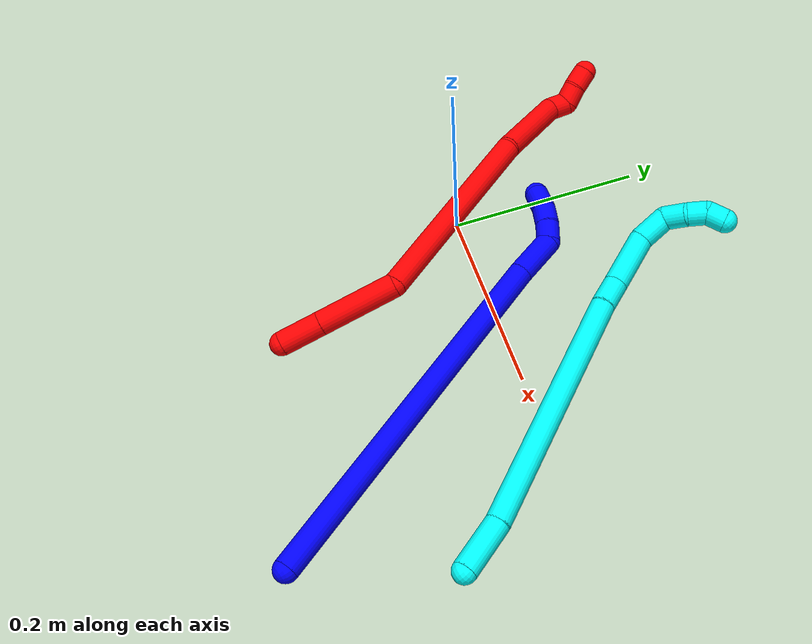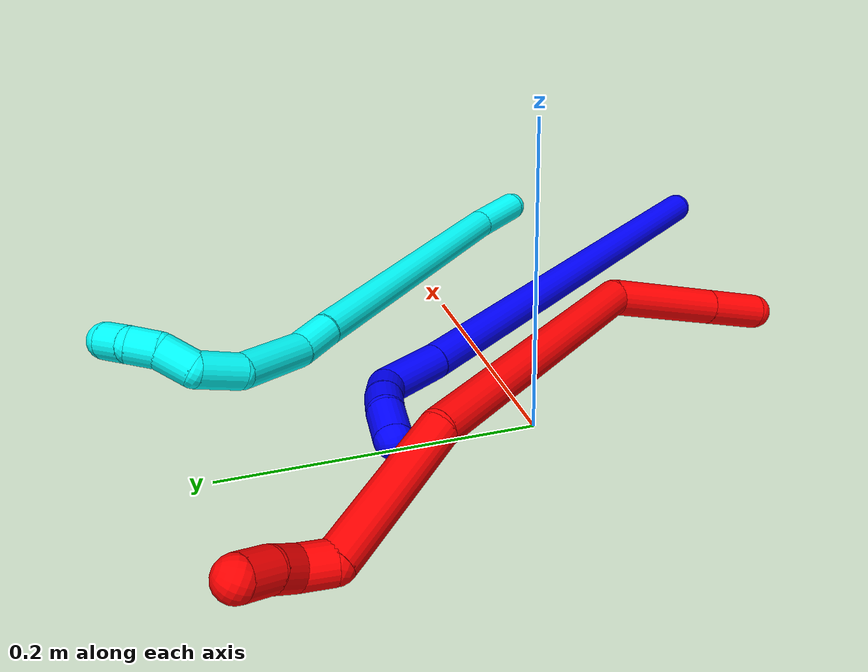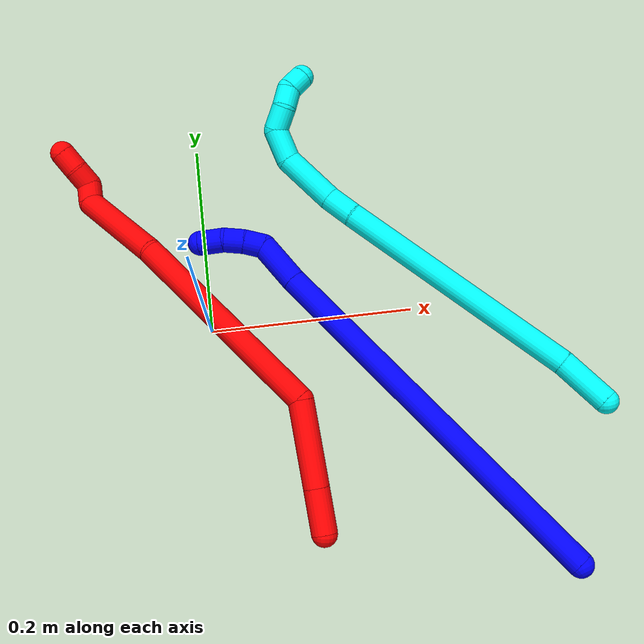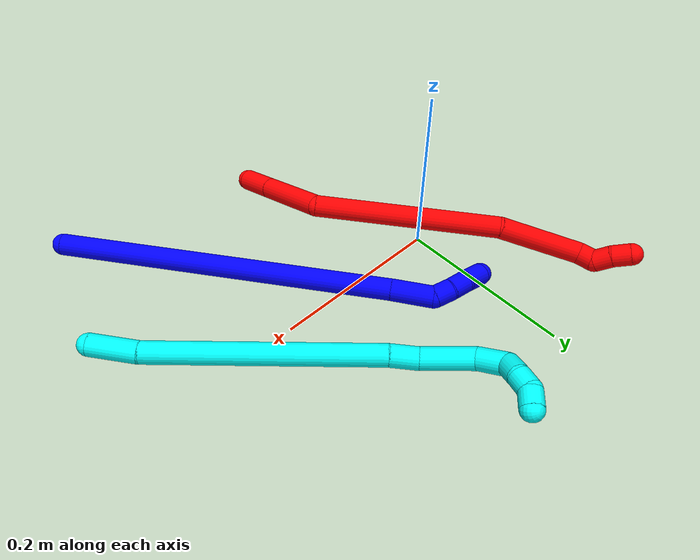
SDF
<sdf version="1.7">
 <world name="default">
  <model name="1">
   <static>0</static>
   <link name="1">
    <collision name="collision-cylinder-e_1_1_4">
     <pose>-0.044673 0.042149 -0.18265 -2.9148 -0.233956 1.60217</pose>
     <geometry><cylinder><radius>0.0125</radius><length>0.3854</length></cylinder></geometry>
     <surface>
      <friction><ode><mu>1.16</mu><mu2>1.16</mu2><slip1>0</slip1><slip2>0</slip2></ode></friction>
      <contact><ode><kp>1e+06</kp><kd>1</kd><max_vel>0</max_vel><min_depth>0.001</min_depth></ode></contact>
     </surface>
    </collision>
    <visual name="visual-cylinder-e_1_1_4">
     <pose>-0.044673 0.042149 -0.18265 -2.9148 -0.233956 1.60217</pose>
     <geometry><cylinder><radius>0.0125</radius><length>0.3854</length></cylinder></geometry>
     <material><ambient>0 0 1 1</ambient></material>
    </visual>
    <collision name="collision-cylinder-e_2_4_5">
     <pose>-0.093506 0.08866 -0.388604 -2.95654 -0.17369 1.50711</pose>
     <geometry><cylinder><radius>0.0125</radius><length>0.048141</length></cylinder></geometry>
     <surface>
      <friction><ode><mu>1.16</mu><mu2>1.16</mu2><slip1>0</slip1><slip2>0</slip2></ode></friction>
      <contact><ode><kp>1e+06</kp><kd>1</kd><max_vel>0</max_vel><min_depth>0.001</min_depth></ode></contact>
     </surface>
    </collision>
    <visual name="visual-cylinder-e_2_4_5">
     <pose>-0.093506 0.08866 -0.388604 -2.95654 -0.17369 1.50711</pose>
     <geometry><cylinder><radius>0.0125</radius><length>0.048141</length></cylinder></geometry>
     <material><ambient>0 0 1 1</ambient></material>
    </visual>
    <collision name="collision-cylinder-e_3_5_6">
     <pose>-0.101841 0.100434 -0.418208 -2.27528 -0.405425 0.836457</pose>
     <geometry><cylinder><radius>0.0125</radius><length>0.021171</length></cylinder></geometry>
     <surface>
      <friction><ode><mu>1.16</mu><mu2>1.16</mu2><slip1>0</slip1><slip2>0</slip2></ode></friction>
      <contact><ode><kp>1e+06</kp><kd>1</kd><max_vel>0</max_vel><min_depth>0.001</min_depth></ode></contact>
     </surface>
    </collision>
    <visual name="visual-cylinder-e_3_5_6">
     <pose>-0.101841 0.100434 -0.418208 -2.27528 -0.405425 0.836457</pose>
     <geometry><cylinder><radius>0.0125</radius><length>0.021171</length></cylinder></geometry>
     <material><ambient>0 0 1 1</ambient></material>
    </visual>
    <collision name="collision-cylinder-e_4_6_7">
     <pose>-0.111134 0.115076 -0.429376 -2.16349 -0.530876 0.944559</pose>
     <geometry><cylinder><radius>0.0125</radius><length>0.020215</length></cylinder></geometry>
     <surface>
      <friction><ode><mu>1.16</mu><mu2>1.16</mu2><slip1>0</slip1><slip2>0</slip2></ode></friction>
      <contact><ode><kp>1e+06</kp><kd>1</kd><max_vel>0</max_vel><min_depth>0.001</min_depth></ode></contact>
     </surface>
    </collision>
    <visual name="visual-cylinder-e_4_6_7">
     <pose>-0.111134 0.115076 -0.429376 -2.16349 -0.530876 0.944559</pose>
     <geometry><cylinder><radius>0.0125</radius><length>0.020215</length></cylinder></geometry>
     <material><ambient>0 0 1 1</ambient></material>
    </visual>
    <collision name="collision-cylinder-e_5_7_2">
     <pose>-0.125317 0.129724 -0.43871 -2.1126 -0.808423 1.2956</pose>
     <geometry><cylinder><radius>0.0125</radius><length>0.025072</length></cylinder></geometry>
     <surface>
      <friction><ode><mu>1.16</mu><mu2>1.16</mu2><slip1>0</slip1><slip2>0</slip2></ode></friction>
      <contact><ode><kp>1e+06</kp><kd>1</kd><max_vel>0</max_vel><min_depth>0.001</min_depth></ode></contact>
     </surface>
    </collision>
    <visual name="visual-cylinder-e_5_7_2">
     <pose>-0.125317 0.129724 -0.43871 -2.1126 -0.808423 1.2956</pose>
     <geometry><cylinder><radius>0.0125</radius><length>0.025072</length></cylinder></geometry>
     <material><ambient>0 0 1 1</ambient></material>
    </visual>
    <collision name="collision-sphere-2">
     <pose>-0.134383 0.137141 -0.443175 0 -0 0</pose>
     <geometry><sphere><radius>0.0125</radius></sphere></geometry>
     <surface>
      <friction><ode><mu>1.16</mu><mu2>1.16</mu2><slip1>0</slip1><slip2>0</slip2></ode></friction>
      <contact><ode><kp>1e+06</kp><kd>1</kd><max_vel>0</max_vel><min_depth>0.001</min_depth></ode></contact>
     </surface>
    </collision>
    <visual name="visual-sphere-2">
     <pose>-0.134383 0.137141 -0.443175 0 -0 0</pose>
     <geometry><sphere><radius>0.0125</radius></sphere></geometry>
     <material><ambient>0 0 1 1</ambient></material>
    </visual>
    <collision name="collision-sphere-7">
     <pose>-0.116251 0.122306 -0.434245 0 -0 0</pose>
     <geometry><sphere><radius>0.0125</radius></sphere></geometry>
     <surface>
      <friction><ode><mu>1.16</mu><mu2>1.16</mu2><slip1>0</slip1><slip2>0</slip2></ode></friction>
      <contact><ode><kp>1e+06</kp><kd>1</kd><max_vel>0</max_vel><min_depth>0.001</min_depth></ode></contact>
     </surface>
    </collision>
    <visual name="visual-sphere-7">
     <pose>-0.116251 0.122306 -0.434245 0 -0 0</pose>
     <geometry><sphere><radius>0.0125</radius></sphere></geometry>
     <material><ambient>0 0 1 1</ambient></material>
    </visual>
    <collision name="collision-sphere-6">
     <pose>-0.106016 0.107846 -0.424507 0 -0 0</pose>
     <geometry><sphere><radius>0.0125</radius></sphere></geometry>
     <surface>
      <friction><ode><mu>1.16</mu><mu2>1.16</mu2><slip1>0</slip1><slip2>0</slip2></ode></friction>
      <contact><ode><kp>1e+06</kp><kd>1</kd><max_vel>0</max_vel><min_depth>0.001</min_depth></ode></contact>
     </surface>
    </collision>
    <visual name="visual-sphere-6">
     <pose>-0.106016 0.107846 -0.424507 0 -0 0</pose>
     <geometry><sphere><radius>0.0125</radius></sphere></geometry>
     <material><ambient>0 0 1 1</ambient></material>
    </visual>
    <collision name="collision-sphere-5">
     <pose>-0.097666 0.093023 -0.411908 0 -0 0</pose>
     <geometry><sphere><radius>0.0125</radius></sphere></geometry>
     <surface>
      <friction><ode><mu>1.16</mu><mu2>1.16</mu2><slip1>0</slip1><slip2>0</slip2></ode></friction>
      <contact><ode><kp>1e+06</kp><kd>1</kd><max_vel>0</max_vel><min_depth>0.001</min_depth></ode></contact>
     </surface>
    </collision>
    <visual name="visual-sphere-5">
     <pose>-0.097666 0.093023 -0.411908 0 -0 0</pose>
     <geometry><sphere><radius>0.0125</radius></sphere></geometry>
     <material><ambient>0 0 1 1</ambient></material>
    </visual>
    <collision name="collision-sphere-1">
     <geometry><sphere><radius>0.0125</radius></sphere></geometry>
     <surface>
      <friction><ode><mu>1.16</mu><mu2>1.16</mu2><slip1>0</slip1><slip2>0</slip2></ode></friction>
      <contact><ode><kp>1e+06</kp><kd>1</kd><max_vel>0</max_vel><min_depth>0.001</min_depth></ode></contact>
     </surface>
    </collision>
    <visual name="visual-sphere-1">
     <geometry><sphere><radius>0.0125</radius></sphere></geometry>
     <material><ambient>0 0 1 1</ambient></material>
    </visual>
    <collision name="collision-sphere-4">
     <pose>-0.089347 0.084298 -0.365301 0 -0 0</pose>
     <geometry><sphere><radius>0.0125</radius></sphere></geometry>
     <surface>
      <friction><ode><mu>1.16</mu><mu2>1.16</mu2><slip1>0</slip1><slip2>0</slip2></ode></friction>
      <contact><ode><kp>1e+06</kp><kd>1</kd><max_vel>0</max_vel><min_depth>0.001</min_depth></ode></contact>
     </surface>
    </collision>
    <visual name="visual-sphere-4">
     <pose>-0.089347 0.084298 -0.365301 0 -0 0</pose>
     <geometry><sphere><radius>0.0125</radius></sphere></geometry>
     <material><ambient>0 0 1 1</ambient></material>
    </visual>
    <inertial>
     <pose>-0.058527 0.056435 -0.235269 0 -0 0</pose>
     <mass>0.5</mass>
     <inertia>
      <ixx>0.004514</ixx>
      <ixy>0</ixy>
      <ixz>0</ixz>
      <iyy>0.005074</iyy>
      <iyz>0</iyz>
      <izz>2.7e-05</izz>
     </inertia>
    </inertial>
   </link>
   <pose>0.317569 -0.268235 0.013461 1.65092 -0.921535 0.25841</pose>
  </model>
  <model name="2">
   <static>0</static>
   <link name="2">
    <collision name="collision-cylinder-e_1_1_4">
     <pose>-0.002318 0.006819 0.020434 -0.322076 -0.107212 0.017432</pose>
     <geometry><cylinder><radius>0.0125</radius><length>0.043333</length></cylinder></geometry>
     <surface>
      <friction><ode><mu>1.16</mu><mu2>1.16</mu2><slip1>0</slip1><slip2>0</slip2></ode></friction>
      <contact><ode><kp>1e+06</kp><kd>1</kd><max_vel>0</max_vel><min_depth>0.001</min_depth></ode></contact>
     </surface>
    </collision>
    <visual name="visual-cylinder-e_1_1_4">
     <pose>-0.002318 0.006819 0.020434 -0.322076 -0.107212 0.017432</pose>
     <geometry><cylinder><radius>0.0125</radius><length>0.043333</length></cylinder></geometry>
     <material><ambient>1 0 0 1</ambient></material>
    </visual>
    <collision name="collision-cylinder-e_2_4_5">
     <pose>-0.00913 0.026692 0.079905 -0.32273 -0.108721 0.017715</pose>
     <geometry><cylinder><radius>0.0125</radius><length>0.082812</length></cylinder></geometry>
     <surface>
      <friction><ode><mu>1.16</mu><mu2>1.16</mu2><slip1>0</slip1><slip2>0</slip2></ode></friction>
      <contact><ode><kp>1e+06</kp><kd>1</kd><max_vel>0</max_vel><min_depth>0.001</min_depth></ode></contact>
     </surface>
    </collision>
    <visual name="visual-cylinder-e_2_4_5">
     <pose>-0.00913 0.026692 0.079905 -0.32273 -0.108721 0.017715</pose>
     <geometry><cylinder><radius>0.0125</radius><length>0.082812</length></cylinder></geometry>
     <material><ambient>1 0 0 1</ambient></material>
    </visual>
    <collision name="collision-cylinder-e_3_5_6">
     <pose>-0.071054 0.104507 0.180439 -0.811236 -0.571496 0.250997</pose>
     <geometry><cylinder><radius>0.0125</radius><length>0.212359</length></cylinder></geometry>
     <surface>
      <friction><ode><mu>1.16</mu><mu2>1.16</mu2><slip1>0</slip1><slip2>0</slip2></ode></friction>
      <contact><ode><kp>1e+06</kp><kd>1</kd><max_vel>0</max_vel><min_depth>0.001</min_depth></ode></contact>
     </surface>
    </collision>
    <visual name="visual-cylinder-e_3_5_6">
     <pose>-0.071054 0.104507 0.180439 -0.811236 -0.571496 0.250997</pose>
     <geometry><cylinder><radius>0.0125</radius><length>0.212359</length></cylinder></geometry>
     <material><ambient>1 0 0 1</ambient></material>
    </visual>
    <collision name="collision-cylinder-e_4_6_7">
     <pose>-0.150565 0.209576 0.261231 -1.12436 -0.458891 0.292182</pose>
     <geometry><cylinder><radius>0.0125</radius><length>0.099693</length></cylinder></geometry>
     <surface>
      <friction><ode><mu>1.16</mu><mu2>1.16</mu2><slip1>0</slip1><slip2>0</slip2></ode></friction>
      <contact><ode><kp>1e+06</kp><kd>1</kd><max_vel>0</max_vel><min_depth>0.001</min_depth></ode></contact>
     </surface>
    </collision>
    <visual name="visual-cylinder-e_4_6_7">
     <pose>-0.150565 0.209576 0.261231 -1.12436 -0.458891 0.292182</pose>
     <geometry><cylinder><radius>0.0125</radius><length>0.099693</length></cylinder></geometry>
     <material><ambient>1 0 0 1</ambient></material>
    </visual>
    <collision name="collision-cylinder-e_5_7_8">
     <pose>-0.172841 0.254543 0.289549 -0.476467 -0.019336 0.004696</pose>
     <geometry><cylinder><radius>0.0125</radius><length>0.020311</length></cylinder></geometry>
     <surface>
      <friction><ode><mu>1.16</mu><mu2>1.16</mu2><slip1>0</slip1><slip2>0</slip2></ode></friction>
      <contact><ode><kp>1e+06</kp><kd>1</kd><max_vel>0</max_vel><min_depth>0.001</min_depth></ode></contact>
     </surface>
    </collision>
    <visual name="visual-cylinder-e_5_7_8">
     <pose>-0.172841 0.254543 0.289549 -0.476467 -0.019336 0.004696</pose>
     <geometry><cylinder><radius>0.0125</radius><length>0.020311</length></cylinder></geometry>
     <material><ambient>1 0 0 1</ambient></material>
    </visual>
    <collision name="collision-cylinder-e_6_8_9">
     <pose>-0.179598 0.260195 0.306244 -0.129005 -0.703289 0.047388</pose>
     <geometry><cylinder><radius>0.0125</radius><length>0.020288</length></cylinder></geometry>
     <surface>
      <friction><ode><mu>1.16</mu><mu2>1.16</mu2><slip1>0</slip1><slip2>0</slip2></ode></friction>
      <contact><ode><kp>1e+06</kp><kd>1</kd><max_vel>0</max_vel><min_depth>0.001</min_depth></ode></contact>
     </surface>
    </collision>
    <visual name="visual-cylinder-e_6_8_9">
     <pose>-0.179598 0.260195 0.306244 -0.129005 -0.703289 0.047388</pose>
     <geometry><cylinder><radius>0.0125</radius><length>0.020288</length></cylinder></geometry>
     <material><ambient>1 0 0 1</ambient></material>
    </visual>
    <collision name="collision-cylinder-e_7_9_2">
     <pose>-0.192512 0.264203 0.321851 -0.362875 -0.642635 0.121975</pose>
     <geometry><cylinder><radius>0.0125</radius><length>0.021204</length></cylinder></geometry>
     <surface>
      <friction><ode><mu>1.16</mu><mu2>1.16</mu2><slip1>0</slip1><slip2>0</slip2></ode></friction>
      <contact><ode><kp>1e+06</kp><kd>1</kd><max_vel>0</max_vel><min_depth>0.001</min_depth></ode></contact>
     </surface>
    </collision>
    <visual name="visual-cylinder-e_7_9_2">
     <pose>-0.192512 0.264203 0.321851 -0.362875 -0.642635 0.121975</pose>
     <geometry><cylinder><radius>0.0125</radius><length>0.021204</length></cylinder></geometry>
     <material><ambient>1 0 0 1</ambient></material>
    </visual>
    <collision name="collision-sphere-2">
     <pose>-0.198866 0.267216 0.329785 0 -0 0</pose>
     <geometry><sphere><radius>0.0125</radius></sphere></geometry>
     <surface>
      <friction><ode><mu>1.16</mu><mu2>1.16</mu2><slip1>0</slip1><slip2>0</slip2></ode></friction>
      <contact><ode><kp>1e+06</kp><kd>1</kd><max_vel>0</max_vel><min_depth>0.001</min_depth></ode></contact>
     </surface>
    </collision>
    <visual name="visual-sphere-2">
     <pose>-0.198866 0.267216 0.329785 0 -0 0</pose>
     <geometry><sphere><radius>0.0125</radius></sphere></geometry>
     <material><ambient>1 0 0 1</ambient></material>
    </visual>
    <collision name="collision-sphere-9">
     <pose>-0.186158 0.26119 0.313917 0 -0 0</pose>
     <geometry><sphere><radius>0.0125</radius></sphere></geometry>
     <surface>
      <friction><ode><mu>1.16</mu><mu2>1.16</mu2><slip1>0</slip1><slip2>0</slip2></ode></friction>
      <contact><ode><kp>1e+06</kp><kd>1</kd><max_vel>0</max_vel><min_depth>0.001</min_depth></ode></contact>
     </surface>
    </collision>
    <visual name="visual-sphere-9">
     <pose>-0.186158 0.26119 0.313917 0 -0 0</pose>
     <geometry><sphere><radius>0.0125</radius></sphere></geometry>
     <material><ambient>1 0 0 1</ambient></material>
    </visual>
    <collision name="collision-sphere-4">
     <pose>-0.004637 0.013638 0.040869 0 -0 0</pose>
     <geometry><sphere><radius>0.0125</radius></sphere></geometry>
     <surface>
      <friction><ode><mu>1.16</mu><mu2>1.16</mu2><slip1>0</slip1><slip2>0</slip2></ode></friction>
      <contact><ode><kp>1e+06</kp><kd>1</kd><max_vel>0</max_vel><min_depth>0.001</min_depth></ode></contact>
     </surface>
    </collision>
    <visual name="visual-sphere-4">
     <pose>-0.004637 0.013638 0.040869 0 -0 0</pose>
     <geometry><sphere><radius>0.0125</radius></sphere></geometry>
     <material><ambient>1 0 0 1</ambient></material>
    </visual>
    <collision name="collision-sphere-1">
     <geometry><sphere><radius>0.0125</radius></sphere></geometry>
     <surface>
      <friction><ode><mu>1.16</mu><mu2>1.16</mu2><slip1>0</slip1><slip2>0</slip2></ode></friction>
      <contact><ode><kp>1e+06</kp><kd>1</kd><max_vel>0</max_vel><min_depth>0.001</min_depth></ode></contact>
     </surface>
    </collision>
    <visual name="visual-sphere-1">
     <geometry><sphere><radius>0.0125</radius></sphere></geometry>
     <material><ambient>1 0 0 1</ambient></material>
    </visual>
    <collision name="collision-sphere-8">
     <pose>-0.173038 0.2592 0.298571 0 -0 0</pose>
     <geometry><sphere><radius>0.0125</radius></sphere></geometry>
     <surface>
      <friction><ode><mu>1.16</mu><mu2>1.16</mu2><slip1>0</slip1><slip2>0</slip2></ode></friction>
      <contact><ode><kp>1e+06</kp><kd>1</kd><max_vel>0</max_vel><min_depth>0.001</min_depth></ode></contact>
     </surface>
    </collision>
    <visual name="visual-sphere-8">
     <pose>-0.173038 0.2592 0.298571 0 -0 0</pose>
     <geometry><sphere><radius>0.0125</radius></sphere></geometry>
     <material><ambient>1 0 0 1</ambient></material>
    </visual>
    <collision name="collision-sphere-5">
     <pose>-0.013623 0.039747 0.118942 0 -0 0</pose>
     <geometry><sphere><radius>0.0125</radius></sphere></geometry>
     <surface>
      <friction><ode><mu>1.16</mu><mu2>1.16</mu2><slip1>0</slip1><slip2>0</slip2></ode></friction>
      <contact><ode><kp>1e+06</kp><kd>1</kd><max_vel>0</max_vel><min_depth>0.001</min_depth></ode></contact>
     </surface>
    </collision>
    <visual name="visual-sphere-5">
     <pose>-0.013623 0.039747 0.118942 0 -0 0</pose>
     <geometry><sphere><radius>0.0125</radius></sphere></geometry>
     <material><ambient>1 0 0 1</ambient></material>
    </visual>
    <collision name="collision-sphere-6">
     <pose>-0.128486 0.169267 0.241936 0 -0 0</pose>
     <geometry><sphere><radius>0.0125</radius></sphere></geometry>
     <surface>
      <friction><ode><mu>1.16</mu><mu2>1.16</mu2><slip1>0</slip1><slip2>0</slip2></ode></friction>
      <contact><ode><kp>1e+06</kp><kd>1</kd><max_vel>0</max_vel><min_depth>0.001</min_depth></ode></contact>
     </surface>
    </collision>
    <visual name="visual-sphere-6">
     <pose>-0.128486 0.169267 0.241936 0 -0 0</pose>
     <geometry><sphere><radius>0.0125</radius></sphere></geometry>
     <material><ambient>1 0 0 1</ambient></material>
    </visual>
    <collision name="collision-sphere-7">
     <pose>-0.172645 0.249886 0.280526 0 -0 0</pose>
     <geometry><sphere><radius>0.0125</radius></sphere></geometry>
     <surface>
      <friction><ode><mu>1.16</mu><mu2>1.16</mu2><slip1>0</slip1><slip2>0</slip2></ode></friction>
      <contact><ode><kp>1e+06</kp><kd>1</kd><max_vel>0</max_vel><min_depth>0.001</min_depth></ode></contact>
     </surface>
    </collision>
    <visual name="visual-sphere-7">
     <pose>-0.172645 0.249886 0.280526 0 -0 0</pose>
     <geometry><sphere><radius>0.0125</radius></sphere></geometry>
     <material><ambient>1 0 0 1</ambient></material>
    </visual>
    <inertial>
     <pose>-0.084384 0.123286 0.181564 0 -0 0</pose>
     <mass>0.5</mass>
     <inertia>
      <ixx>0.00097</ixx>
      <ixy>0</ixy>
      <ixz>0</ixz>
      <iyy>0.000935</iyy>
      <iyz>0</iyz>
      <izz>-7.3e-05</izz>
     </inertia>
    </inertial>
   </link>
   <pose>0.087477 -0.212589 0.011497 -1.01033 0.347507 0.041817</pose>
  </model>
  <model name="3">
   <static>0</static>
   <link name="3">
    <collision name="collision-cylinder-e_1_1_4">
     <pose>-0.00168 0.020303 0.018172 -0.840727 -0.061586 0.027536</pose>
     <geometry><cylinder><radius>0.0125</radius><length>0.054598</length></cylinder></geometry>
     <surface>
      <friction><ode><mu>1.16</mu><mu2>1.16</mu2><slip1>0</slip1><slip2>0</slip2></ode></friction>
      <contact><ode><kp>1e+06</kp><kd>1</kd><max_vel>0</max_vel><min_depth>0.001</min_depth></ode></contact>
     </surface>
    </collision>
    <visual name="visual-cylinder-e_1_1_4">
     <pose>-0.00168 0.020303 0.018172 -0.840727 -0.061586 0.027536</pose>
     <geometry><cylinder><radius>0.0125</radius><length>0.054598</length></cylinder></geometry>
     <material><ambient>0.003922 1 0.996078 1</ambient></material>
    </visual>
    <collision name="collision-cylinder-e_2_4_5">
     <pose>-0.029047 0.137881 0.116246 -0.883137 -0.201289 0.095399</pose>
     <geometry><cylinder><radius>0.0125</radius><length>0.256958</length></cylinder></geometry>
     <surface>
      <friction><ode><mu>1.16</mu><mu2>1.16</mu2><slip1>0</slip1><slip2>0</slip2></ode></friction>
      <contact><ode><kp>1e+06</kp><kd>1</kd><max_vel>0</max_vel><min_depth>0.001</min_depth></ode></contact>
     </surface>
    </collision>
    <visual name="visual-cylinder-e_2_4_5">
     <pose>-0.029047 0.137881 0.116246 -0.883137 -0.201289 0.095399</pose>
     <geometry><cylinder><radius>0.0125</radius><length>0.256958</length></cylinder></geometry>
     <material><ambient>0.003922 1 0.996078 1</ambient></material>
    </visual>
    <collision name="collision-cylinder-e_3_5_6">
     <pose>-0.056454 0.247746 0.205593 -0.927187 -0.108831 0.054448</pose>
     <geometry><cylinder><radius>0.0125</radius><length>0.031663</length></cylinder></geometry>
     <surface>
      <friction><ode><mu>1.16</mu><mu2>1.16</mu2><slip1>0</slip1><slip2>0</slip2></ode></friction>
      <contact><ode><kp>1e+06</kp><kd>1</kd><max_vel>0</max_vel><min_depth>0.001</min_depth></ode></contact>
     </surface>
    </collision>
    <visual name="visual-cylinder-e_3_5_6">
     <pose>-0.056454 0.247746 0.205593 -0.927187 -0.108831 0.054448</pose>
     <geometry><cylinder><radius>0.0125</radius><length>0.031663</length></cylinder></geometry>
     <material><ambient>0.003922 1 0.996078 1</ambient></material>
    </visual>
    <collision name="collision-cylinder-e_4_6_7">
     <pose>-0.064115 0.279069 0.23693 -0.707827 -0.203332 0.075349</pose>
     <geometry><cylinder><radius>0.0125</radius><length>0.058841</length></cylinder></geometry>
     <surface>
      <friction><ode><mu>1.16</mu><mu2>1.16</mu2><slip1>0</slip1><slip2>0</slip2></ode></friction>
      <contact><ode><kp>1e+06</kp><kd>1</kd><max_vel>0</max_vel><min_depth>0.001</min_depth></ode></contact>
     </surface>
    </collision>
    <visual name="visual-cylinder-e_4_6_7">
     <pose>-0.064115 0.279069 0.23693 -0.707827 -0.203332 0.075349</pose>
     <geometry><cylinder><radius>0.0125</radius><length>0.058841</length></cylinder></geometry>
     <material><ambient>0.003922 1 0.996078 1</ambient></material>
    </visual>
    <collision name="collision-cylinder-e_5_7_8">
     <pose>-0.069804 0.303232 0.274399 -0.335318 0.015223 -0.002577</pose>
     <geometry><cylinder><radius>0.0125</radius><length>0.032995</length></cylinder></geometry>
     <surface>
      <friction><ode><mu>1.16</mu><mu2>1.16</mu2><slip1>0</slip1><slip2>0</slip2></ode></friction>
      <contact><ode><kp>1e+06</kp><kd>1</kd><max_vel>0</max_vel><min_depth>0.001</min_depth></ode></contact>
     </surface>
    </collision>
    <visual name="visual-cylinder-e_5_7_8">
     <pose>-0.069804 0.303232 0.274399 -0.335318 0.015223 -0.002577</pose>
     <geometry><cylinder><radius>0.0125</radius><length>0.032995</length></cylinder></geometry>
     <material><ambient>0.003922 1 0.996078 1</ambient></material>
    </visual>
    <collision name="collision-cylinder-e_6_8_9">
     <pose>-0.064458 0.304909 0.300717 0.336002 0.421058 0.072454</pose>
     <geometry><cylinder><radius>0.0125</radius><length>0.024933</length></cylinder></geometry>
     <surface>
      <friction><ode><mu>1.16</mu><mu2>1.16</mu2><slip1>0</slip1><slip2>0</slip2></ode></friction>
      <contact><ode><kp>1e+06</kp><kd>1</kd><max_vel>0</max_vel><min_depth>0.001</min_depth></ode></contact>
     </surface>
    </collision>
    <visual name="visual-cylinder-e_6_8_9">
     <pose>-0.064458 0.304909 0.300717 0.336002 0.421058 0.072454</pose>
     <geometry><cylinder><radius>0.0125</radius><length>0.024933</length></cylinder></geometry>
     <material><ambient>0.003922 1 0.996078 1</ambient></material>
    </visual>
    <collision name="collision-cylinder-e_7_9_10">
     <pose>-0.053716 0.30087 0.319711 0.034788 0.599749 0.010758</pose>
     <geometry><cylinder><radius>0.0125</radius><length>0.020007</length></cylinder></geometry>
     <surface>
      <friction><ode><mu>1.16</mu><mu2>1.16</mu2><slip1>0</slip1><slip2>0</slip2></ode></friction>
      <contact><ode><kp>1e+06</kp><kd>1</kd><max_vel>0</max_vel><min_depth>0.001</min_depth></ode></contact>
     </surface>
    </collision>
    <visual name="visual-cylinder-e_7_9_10">
     <pose>-0.053716 0.30087 0.319711 0.034788 0.599749 0.010758</pose>
     <geometry><cylinder><radius>0.0125</radius><length>0.020007</length></cylinder></geometry>
     <material><ambient>0.003922 1 0.996078 1</ambient></material>
    </visual>
    <collision name="collision-cylinder-e_8_10_2">
     <pose>-0.039351 0.298603 0.332448 0.415889 1.0586 0.245612</pose>
     <geometry><cylinder><radius>0.0125</radius><length>0.020006</length></cylinder></geometry>
     <surface>
      <friction><ode><mu>1.16</mu><mu2>1.16</mu2><slip1>0</slip1><slip2>0</slip2></ode></friction>
      <contact><ode><kp>1e+06</kp><kd>1</kd><max_vel>0</max_vel><min_depth>0.001</min_depth></ode></contact>
     </surface>
    </collision>
    <visual name="visual-cylinder-e_8_10_2">
     <pose>-0.039351 0.298603 0.332448 0.415889 1.0586 0.245612</pose>
     <geometry><cylinder><radius>0.0125</radius><length>0.020006</length></cylinder></geometry>
     <material><ambient>0.003922 1 0.996078 1</ambient></material>
    </visual>
    <collision name="collision-sphere-2">
     <pose>-0.030631 0.296622 0.336933 0 -0 0</pose>
     <geometry><sphere><radius>0.0125</radius></sphere></geometry>
     <surface>
      <friction><ode><mu>1.16</mu><mu2>1.16</mu2><slip1>0</slip1><slip2>0</slip2></ode></friction>
      <contact><ode><kp>1e+06</kp><kd>1</kd><max_vel>0</max_vel><min_depth>0.001</min_depth></ode></contact>
     </surface>
    </collision>
    <visual name="visual-sphere-2">
     <pose>-0.030631 0.296622 0.336933 0 -0 0</pose>
     <geometry><sphere><radius>0.0125</radius></sphere></geometry>
     <material><ambient>0.003922 1 0.996078 1</ambient></material>
    </visual>
    <collision name="collision-sphere-10">
     <pose>-0.04807 0.300583 0.327964 0 -0 0</pose>
     <geometry><sphere><radius>0.0125</radius></sphere></geometry>
     <surface>
      <friction><ode><mu>1.16</mu><mu2>1.16</mu2><slip1>0</slip1><slip2>0</slip2></ode></friction>
      <contact><ode><kp>1e+06</kp><kd>1</kd><max_vel>0</max_vel><min_depth>0.001</min_depth></ode></contact>
     </surface>
    </collision>
    <visual name="visual-sphere-10">
     <pose>-0.04807 0.300583 0.327964 0 -0 0</pose>
     <geometry><sphere><radius>0.0125</radius></sphere></geometry>
     <material><ambient>0.003922 1 0.996078 1</ambient></material>
    </visual>
    <collision name="collision-sphere-9">
     <pose>-0.059363 0.301158 0.311458 0 -0 0</pose>
     <geometry><sphere><radius>0.0125</radius></sphere></geometry>
     <surface>
      <friction><ode><mu>1.16</mu><mu2>1.16</mu2><slip1>0</slip1><slip2>0</slip2></ode></friction>
      <contact><ode><kp>1e+06</kp><kd>1</kd><max_vel>0</max_vel><min_depth>0.001</min_depth></ode></contact>
     </surface>
    </collision>
    <visual name="visual-sphere-9">
     <pose>-0.059363 0.301158 0.311458 0 -0 0</pose>
     <geometry><sphere><radius>0.0125</radius></sphere></geometry>
     <material><ambient>0.003922 1 0.996078 1</ambient></material>
    </visual>
    <collision name="collision-sphere-4">
     <pose>-0.00336 0.040605 0.036343 0 -0 0</pose>
     <geometry><sphere><radius>0.0125</radius></sphere></geometry>
     <surface>
      <friction><ode><mu>1.16</mu><mu2>1.16</mu2><slip1>0</slip1><slip2>0</slip2></ode></friction>
      <contact><ode><kp>1e+06</kp><kd>1</kd><max_vel>0</max_vel><min_depth>0.001</min_depth></ode></contact>
     </surface>
    </collision>
    <visual name="visual-sphere-4">
     <pose>-0.00336 0.040605 0.036343 0 -0 0</pose>
     <geometry><sphere><radius>0.0125</radius></sphere></geometry>
     <material><ambient>0.003922 1 0.996078 1</ambient></material>
    </visual>
    <collision name="collision-sphere-1">
     <geometry><sphere><radius>0.0125</radius></sphere></geometry>
     <surface>
      <friction><ode><mu>1.16</mu><mu2>1.16</mu2><slip1>0</slip1><slip2>0</slip2></ode></friction>
      <contact><ode><kp>1e+06</kp><kd>1</kd><max_vel>0</max_vel><min_depth>0.001</min_depth></ode></contact>
     </surface>
    </collision>
    <visual name="visual-sphere-1">
     <geometry><sphere><radius>0.0125</radius></sphere></geometry>
     <material><ambient>0.003922 1 0.996078 1</ambient></material>
    </visual>
    <collision name="collision-sphere-8">
     <pose>-0.069553 0.30866 0.289976 0 -0 0</pose>
     <geometry><sphere><radius>0.0125</radius></sphere></geometry>
     <surface>
      <friction><ode><mu>1.16</mu><mu2>1.16</mu2><slip1>0</slip1><slip2>0</slip2></ode></friction>
      <contact><ode><kp>1e+06</kp><kd>1</kd><max_vel>0</max_vel><min_depth>0.001</min_depth></ode></contact>
     </surface>
    </collision>
    <visual name="visual-sphere-8">
     <pose>-0.069553 0.30866 0.289976 0 -0 0</pose>
     <geometry><sphere><radius>0.0125</radius></sphere></geometry>
     <material><ambient>0.003922 1 0.996078 1</ambient></material>
    </visual>
    <collision name="collision-sphere-5">
     <pose>-0.054735 0.235156 0.196149 0 -0 0</pose>
     <geometry><sphere><radius>0.0125</radius></sphere></geometry>
     <surface>
      <friction><ode><mu>1.16</mu><mu2>1.16</mu2><slip1>0</slip1><slip2>0</slip2></ode></friction>
      <contact><ode><kp>1e+06</kp><kd>1</kd><max_vel>0</max_vel><min_depth>0.001</min_depth></ode></contact>
     </surface>
    </collision>
    <visual name="visual-sphere-5">
     <pose>-0.054735 0.235156 0.196149 0 -0 0</pose>
     <geometry><sphere><radius>0.0125</radius></sphere></geometry>
     <material><ambient>0.003922 1 0.996078 1</ambient></material>
    </visual>
    <collision name="collision-sphere-6">
     <pose>-0.058174 0.260335 0.215037 0 -0 0</pose>
     <geometry><sphere><radius>0.0125</radius></sphere></geometry>
     <surface>
      <friction><ode><mu>1.16</mu><mu2>1.16</mu2><slip1>0</slip1><slip2>0</slip2></ode></friction>
      <contact><ode><kp>1e+06</kp><kd>1</kd><max_vel>0</max_vel><min_depth>0.001</min_depth></ode></contact>
     </surface>
    </collision>
    <visual name="visual-sphere-6">
     <pose>-0.058174 0.260335 0.215037 0 -0 0</pose>
     <geometry><sphere><radius>0.0125</radius></sphere></geometry>
     <material><ambient>0.003922 1 0.996078 1</ambient></material>
    </visual>
    <collision name="collision-sphere-7">
     <pose>-0.070056 0.297804 0.258822 0 -0 0</pose>
     <geometry><sphere><radius>0.0125</radius></sphere></geometry>
     <surface>
      <friction><ode><mu>1.16</mu><mu2>1.16</mu2><slip1>0</slip1><slip2>0</slip2></ode></friction>
      <contact><ode><kp>1e+06</kp><kd>1</kd><max_vel>0</max_vel><min_depth>0.001</min_depth></ode></contact>
     </surface>
    </collision>
    <visual name="visual-sphere-7">
     <pose>-0.070056 0.297804 0.258822 0 -0 0</pose>
     <geometry><sphere><radius>0.0125</radius></sphere></geometry>
     <material><ambient>0.003922 1 0.996078 1</ambient></material>
    </visual>
    <inertial>
     <pose>-0.037776 0.180807 0.161825 0 -0 0</pose>
     <mass>0.5</mass>
     <inertia>
      <ixx>0.001568</ixx>
      <ixy>0</ixy>
      <ixz>0</ixz>
      <iyy>0.001116</iyy>
      <iyz>0</iyz>
      <izz>-0.000792</izz>
     </inertia>
    </inertial>
   </link>
   <pose>0.372001 -0.11968 0.01391 -0.809801 0.574451 0.563328</pose>
  </model>
 </world>
</sdf>
